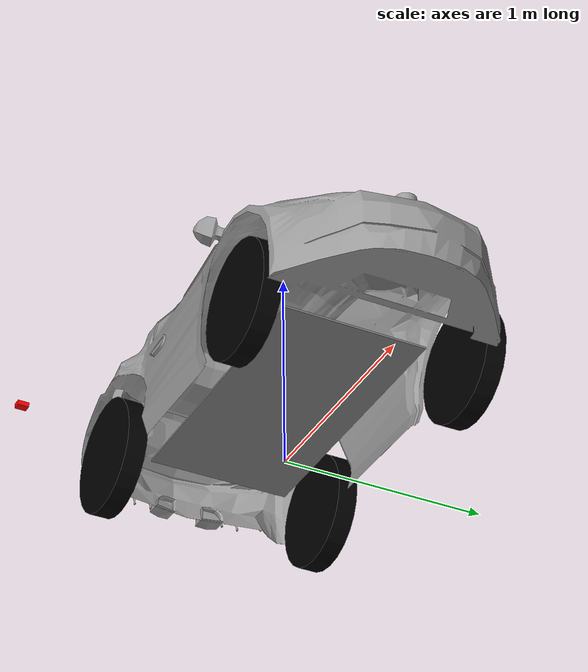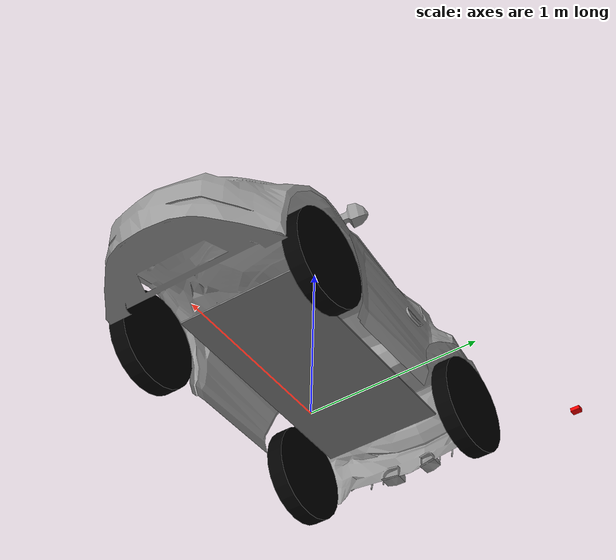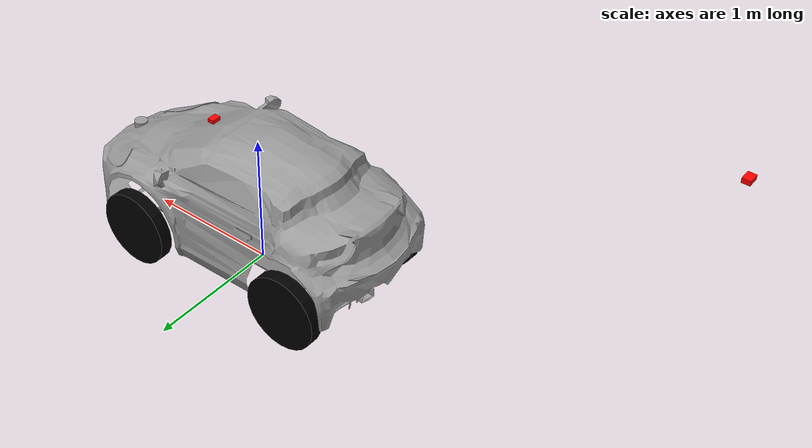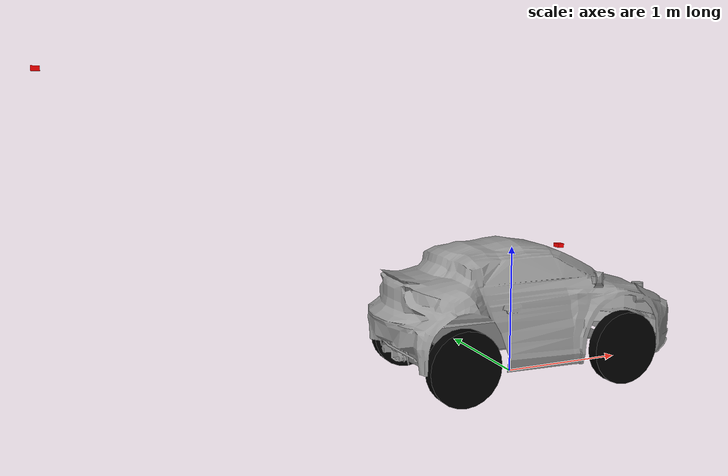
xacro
<?xml version="1.0"?>
<robot name="astrid" xmlns:xacro="http://www.ros.org/wiki/xacro">
  <!-- Degree-to-radian conversions -->
  <xacro:property name="degrees_45" value="0.785398163" />
  <xacro:property name="degrees_90" value="1.57079633" />
  <xacro:property name="degrees_30" value="0.523598776" />

  <!-- chassis_length is measured along the x axis, chassis_width
       along the y axis, and chassis_height along the z axis. -->
  <xacro:property name="chassis_length" value="1.3596" />
  <xacro:property name="chassis_width" value="1" />
  <xacro:property name="chassis_height" value="0.01" />
  <xacro:property name="chassis_mass" value="55" />

  <xacro:property name="battery_x_offset" value="0.055" />
  <xacro:property name="battery_dist" value="0.065" />
  <xacro:property name="battery_comp_depth" value="0.02" />
  <xacro:property name="battery_comp_angle" value="0.34906585" />
  <xacro:property name="battery_length" value="0.16" />
  <xacro:property name="battery_width" value="0.047" />
  <xacro:property name="battery_height" value="0.024" />
  <xacro:property name="battery_mass" value="0.5025" />

  <xacro:property name="hub_dia" value="0.06" />
  <xacro:property name="tire_dia" value="0.56" />
  <xacro:property name="tire_width" value="0.095" />
  <xacro:property name="hex_hub_depth" value="0.039" />
  <xacro:property name="wheel_mass" value="7" />

  <xacro:property name="wheelbase" value="1.3596" />
  <xacro:property name="hex_hub_dist" value="1.1" />
  <xacro:property name="axle_length" value="0.009" />
  <xacro:property name="wheel_travel" value="0.05" />
  <xacro:property name="shock_z_offset" value="0.0655" />

  <xacro:property name="shock_eff_limit" value="3940.4" />
  <xacro:property name="shock_vel_limit" value="1000" />

  <xacro:property name="axle_eff_limit" value="28.5" />
  <xacro:property name="axle_vel_limit" value="14.66" />

  <!-- These constants are used to simulate a Traxxas 2056 servo operated at
       6 V. servo_stall_torque is measured in N m. servo_no_load_speed is
       measured in rad/s. -->
  <xacro:property name="servo_stall_torque" value="57" />
  <xacro:property name="servo_no_load_speed" value="14.66" />

  <material name="battery_mat">
    <color rgba="0 0 1 1" />
  </material>
  <material name="chassis_mat">
    <color rgba="0.5 0.5 0.5 1" />
  </material>
  <material name="tire_mat">
    <color rgba="0 0 0 1" />
  </material>

  <material name="red">
    <color rgba="1 0 0 1" />
  </material>

  <material name="green">
    <color rgba="0 0 0 1" />
  </material>

  <!-- Null inertial element. This is needed to make the model work with
       Gazebo. -->
  <xacro:macro name="null_inertial">
    <inertial>
      <mass value="0.001" />
      <inertia ixx="0.001" ixy="0" ixz="0" iyy="0.001" iyz="0" izz="0.001" />
    </inertial>
  </xacro:macro>

  <!-- Inertia of a solid cuboid. Width is measured along the x axis, depth
       along the y axis, and height along the z axis. -->
  <xacro:macro name="solid_cuboid_inertial" params="width depth height mass *origin">
    <inertial>
      <xacro:insert_block name="origin" />
      <mass value="${mass}" />
      <inertia ixx="${mass * (depth * depth + height * height) / 12}" ixy="0" ixz="0" iyy="${mass * (width * width + height * height) / 12}" iyz="0" izz="${mass * (width * width + depth * depth) / 12}" />
    </inertial>
  </xacro:macro>

  <xacro:macro name="thick_walled_tube_inertial" params="inner_rad outer_rad height mass">
    <inertial>
      <mass value="${mass}" />
      <inertia ixx="${(1 / 12) * mass * (3 * (inner_rad * inner_rad +
                    outer_rad * outer_rad) + height * height)}" ixy="0" ixz="0" iyy="${(1 / 12) * mass * (3 * (inner_rad * inner_rad +
                    outer_rad * outer_rad) + height * height)}" iyz="0" izz="${mass * (inner_rad * inner_rad +
                    outer_rad * outer_rad) / 2}" />
    </inertial>
  </xacro:macro>

  <!-- Gazebo - Wheels  -->
  <xacro:macro name="wheels_g">
    <mu1 value="1.0"/>
    <mu2 value="1.0"/>
    <kp  value="15000000.0" />
    <kd  value="1.0" />
    <fdir1 value="1 0 0"/>
  </xacro:macro>

  <xacro:macro name="chassis_g">
    <mu1 value="0"/>
    <mu2 value="0"/>
    <kp  value="70000000000.0" />
    <kd  value="0.001" />
  </xacro:macro>

  <!-- Shock absorber -->
  <xacro:macro name="shock" params="lr_prefix fr_prefix lr_reflect fr_reflect child">
    <joint name="${lr_prefix}_${fr_prefix}_shock" type="prismatic">
      <parent link="chassis" />
      <child link="${child}" />

      <origin xyz="${fr_reflect * wheelbase / 2}
                   ${lr_reflect * ((hex_hub_dist / 2) - axle_length)}
                   ${(wheel_travel / 2) - shock_z_offset}" />
      <axis xyz="0 0 -1" />
      <limit lower="${-wheel_travel / 2}" upper="${wheel_travel / 2}" effort="${shock_eff_limit}" velocity="${shock_vel_limit}" />
    </joint>
    <transmission name="${lr_prefix}_${fr_prefix}_shock_trans">
      <type>transmission_interface/SimpleTransmission</type>
      <joint name="${lr_prefix}_${fr_prefix}_shock">
        <hardwareInterface>hardware_interface/EffortJointInterface</hardwareInterface>
      </joint>
      <actuator name="${lr_prefix}_${fr_prefix}_shock_act">
        <!-- This hardwareInterface element exists for compatibility
             with ROS Hydro. -->
        <hardwareInterface>hardware_interface/EffortJointInterface</hardwareInterface>
        <mechanicalReduction>1</mechanicalReduction>
      </actuator>
    </transmission>
  </xacro:macro>

  <!-- The "wheel" macro defines an axle carrier, axle, and wheel. -->
  <xacro:macro name="wheel" params="lr_prefix fr_prefix lr_reflect">
    <link name="${lr_prefix}_${fr_prefix}_axle_carrier">
      <xacro:null_inertial />
    </link>

    <!-- The left and right axles have the same axis so that identical
         rotation values cause the wheels to rotate in the same direction. -->
    <joint name="${lr_prefix}_${fr_prefix}_axle" type="continuous">
      <parent link="${lr_prefix}_${fr_prefix}_axle_carrier" />
      <child link="${lr_prefix}_${fr_prefix}_wheel" />
      <origin rpy="${degrees_90} 0 0" />
      <axis xyz="0 0 -1" />
      <limit effort="${axle_eff_limit+10}" velocity="${axle_vel_limit+5}" />
    </joint>
    <transmission name="${lr_prefix}_${fr_prefix}_axle_trans">
      <type>transmission_interface/SimpleTransmission</type>
      <joint name="${lr_prefix}_${fr_prefix}_axle">
        <hardwareInterface>hardware_interface/EffortJointInterface</hardwareInterface>
      </joint>
      <actuator name="${lr_prefix}_${fr_prefix}_axle_act">
        <!-- This hardwareInterface element exists for compatibility
             with ROS Hydro. -->
        <hardwareInterface>hardware_interface/EffortJointInterface</hardwareInterface>
        <mechanicalReduction>1</mechanicalReduction>
      </actuator>
    </transmission>

    <link name="${lr_prefix}_${fr_prefix}_wheel">
      <visual>
        <origin xyz="0
                     ${lr_reflect * (axle_length - (tire_width /
                     2 - hex_hub_depth))}
                     0" />
        <geometry>
          <cylinder radius="${tire_dia / 2}" length="${tire_width}" />
        </geometry>
        <material name="tire_mat" />
      </visual>

      <collision>
        <origin xyz="0
                     ${lr_reflect * (axle_length - (tire_width /
                     2 - hex_hub_depth))}
                     0" />
        <geometry>
          <cylinder radius="${tire_dia / 2}" length="${tire_width}" />
        </geometry>
      </collision>

      <xacro:thick_walled_tube_inertial inner_rad="${hub_dia / 2}" outer_rad="${tire_dia / 2}" height="${tire_width}" mass="${wheel_mass}" />
    </link>

    <gazebo reference="${lr_prefix}_${fr_prefix}_wheel">
      <xacro:wheels_g />
      <material>Gazebo/Black</material>
    </gazebo>
  </xacro:macro>

  <!-- Front wheel -->
  <xacro:macro name="front_wheel" params="lr_prefix fr_prefix lr_reflect fr_reflect">
    <xacro:shock lr_prefix="${lr_prefix}" fr_prefix="${fr_prefix}" lr_reflect="${lr_reflect}" fr_reflect="${fr_reflect}" child="${lr_prefix}_steering_link" />

    <link name="${lr_prefix}_steering_link">
      <xacro:null_inertial />
    </link>

    <joint name="${lr_prefix}_steering_joint" type="revolute">
      <parent link="${lr_prefix}_steering_link" />
      <child link="${lr_prefix}_${fr_prefix}_axle_carrier" />
      <axis xyz="0 0 1" />
      <limit lower="${-degrees_30}" upper="${degrees_30}" effort="${servo_stall_torque}" velocity="${servo_no_load_speed}" />
    </joint>
    <transmission name="${lr_prefix}_steering_trans">
      <type>transmission_interface/SimpleTransmission</type>
      <joint name="${lr_prefix}_steering_joint">
        <hardwareInterface>hardware_interface/EffortJointInterface</hardwareInterface>
      </joint>
      <actuator name="${lr_prefix}_steering_act">
        <!-- This hardwareInterface element exists for compatibility
             with ROS Hydro. -->
        <hardwareInterface>hardware_interface/EffortJointInterface</hardwareInterface>
        <mechanicalReduction>1</mechanicalReduction>
      </actuator>
    </transmission>

    <xacro:wheel lr_prefix="${lr_prefix}" fr_prefix="${fr_prefix}" lr_reflect="${lr_reflect}" />
  </xacro:macro>

  <!-- Rear wheel -->
  <xacro:macro name="rear_wheel" params="lr_prefix fr_prefix lr_reflect fr_reflect">
    <xacro:shock lr_prefix="${lr_prefix}" fr_prefix="${fr_prefix}" lr_reflect="${lr_reflect}" fr_reflect="${fr_reflect}" child="${lr_prefix}_${fr_prefix}_axle_carrier" />
    <xacro:wheel lr_prefix="${lr_prefix}" fr_prefix="${fr_prefix}" lr_reflect="${lr_reflect}" />
  </xacro:macro>

  <!-- base_link must have geometry so that its axes can be displayed in
       rviz. -->
  <link name="base_link" />
  <!-- Chassis -->
  <link name="chassis">
    <visual>
      <origin xyz="0 0 0" />

      <geometry>
        <box size="${chassis_length} ${chassis_width-0.3} ${chassis_height}" />
      </geometry>
      <material name="chassis_mat" />
    </visual>

    <collision>
      <origin xyz="0 0 0" />
      <geometry>
        <box size="${chassis_length} ${chassis_width-0.3} ${chassis_height}"/>
      </geometry>
    </collision>

    <xacro:solid_cuboid_inertial width="${chassis_length}" depth="${chassis_width}" height="${chassis_height*20}" mass="${chassis_mass}">
      <origin xyz="0 0 0" />
    </xacro:solid_cuboid_inertial>
  </link>
  <gazebo reference="chassis">
    <material>Gazebo/Grey</material>
  </gazebo>

  <joint name="base_link_to_chassis" type="fixed">
    <parent link="base_link" />
    <child link="chassis" />
    <origin xyz="0.0 0.0 0.3" rpy="0.0 0.0 0.0"/>
  </joint>

  <!-- Batteries -->

  <!-- Shelll-->
  <link name="shell">
    <visual>
      <origin xyz="0 0 0" rpy="0 0 1.57" />
      <geometry>
        <mesh filename="package://astrid_description/meshes/kabuk.dae" />
      </geometry>
    </visual>

    <collision>
      <origin xyz="0 0 0" rpy="0 0 1.57" />
      <geometry>
        <mesh filename="package://astrid_description/meshes/kabuk.dae" />
      </geometry>
    </collision>
  </link>

  <gazebo reference="shell">
    <material>Gazebo/Grey</material>
  </gazebo>

  <joint name="chassis_shell_joint" type="fixed">
    <origin xyz="-0.28 -.017 0.19" rpy="0.0 0.0 0.0" />
    <parent link="chassis" />
    <child link="shell" />
    <axis xyz="0.0 0.0 0.0" />
    <limit lower="0.0" upper="0.0" effort="0.0" velocity="0.0" />
  </joint>

  <!-- Wheels -->
  <xacro:front_wheel lr_prefix="left" fr_prefix="front" lr_reflect="1" fr_reflect="1" />
  <xacro:front_wheel lr_prefix="right" fr_prefix="front" lr_reflect="-1" fr_reflect="1" />
  <xacro:rear_wheel lr_prefix="left" fr_prefix="rear" lr_reflect="1" fr_reflect="-1" />
  <xacro:rear_wheel lr_prefix="right" fr_prefix="rear" lr_reflect="-1" fr_reflect="-1" />

  <joint name="camera_joint" type="fixed">
    <axis xyz="0 1 0" />
    <origin xyz="0.7 0 0.5" rpy="0 0 0" />
    <parent link="shell" />
    <child link="camera_link" />
  </joint>

  <!-- Camera -->
  <link name="camera_link">
    <visual>
      <origin xyz="0 0 0" rpy="0 0 0" />
      <geometry>
        <box size="0.05 0.07 0.03" />
      </geometry>
      <material name="red" />
    </visual>

    <inertial>
      <mass value="1e-5" />
      <origin xyz="0 0 0" rpy="0 0 0" />
      <inertia ixx="1e-6" ixy="0" ixz="0" iyy="1e-6" iyz="0" izz="1e-6" />
    </inertial>
  </link>

  <!-- camera -->
  <gazebo reference="camera_link">
    <sensor type="camera" name="main_camera">
      <camera name="head">
        <horizontal_fov>1.3962634</horizontal_fov>
        <image>
          <width>1280</width>
          <height>720</height>
          <format>R8G8B8</format>
        </image>
        <clip>
          <near>0.02</near>
          <far>50</far>
        </clip>
        <noise>
          <type>gaussian</type>
          <mean>0.0</mean>
          <stddev>0.007</stddev>
        </noise>
      </camera>
      <plugin name="camera_controller" filename="libgazebo_ros_camera.so">
        <alwaysOn>true</alwaysOn>
        <updateRate>30.0</updateRate>
        <cameraName>camera</cameraName>
        <imageTopicName>image_raw</imageTopicName>
        <cameraInfoTopicName>camera_info</cameraInfoTopicName>
        <frameName>camera_link</frameName>
        <hackBaseline>0.07</hackBaseline>
        <distortionK1>0.0</distortionK1>
        <distortionK2>0.0</distortionK2>
        <distortionK3>0.0</distortionK3>
        <distortionT1>0.0</distortionT1>
        <distortionT2>0.0</distortionT2>
      </plugin>
    </sensor>
  </gazebo>

  <!-- laser -->

<xacro:macro name="base_scan_geometry">
  <geometry>
    <cylinder length="0.05" radius="0.05" />
  </geometry>
</xacro:macro>

<xacro:macro name="lidar_geometry">
  <geometry>
    <cylinder length="0.1" radius="0.04" />
  </geometry>
</xacro:macro>

  <joint name="base_scan_joint" type="fixed">
    <origin xyz="1.2 -0.032 0.3" rpy="0 0.0 0.0" />
    <parent link="chassis" />
    <child link="base_scan" />
  </joint>

  <link name="base_scan">
      <visual>
          <xacro:base_scan_geometry />
      </visual>

      <inertial>
        <mass value="0.1"/>
        <inertia ixx="0.00008333333" ixy="0" ixz="0" iyy="0.00008333333" iyz="0" izz="0.000125"/>
      </inertial>
  </link>

  <gazebo reference="base_scan">
    <material>Gazebo/Grey</material>
    <mu1>0.2</mu1>
    <mu2>0.2</mu2>
  </gazebo>

  <gazebo reference="base_scan">
    <sensor type="ray" name="lidar">
      <pose>0 0 0 0 0 0</pose>
      <visualize>true</visualize>
      <update_rate>50</update_rate>
      <ray>
        <scan>
          <horizontal>
            <samples>720</samples>
            <resolution>1</resolution>
            <min_angle>-1.57079</min_angle>
            <max_angle>1.57079</max_angle>
          </horizontal>
        </scan>
        <range>
          <min>0.10</min>
          <max>21.0</max>
          <resolution>0.01</resolution>
        </range>
        <noise>
          <type>gaussian</type>
          <mean>0.0</mean>
          <stddev>0.01</stddev>
        </noise>
      </ray>
      <plugin name="lidar_controller" filename="libgazebo_ros_laser.so">
        <topicName>scan</topicName>
        <frameName>base_scan</frameName>
        <alwaysOn>true</alwaysOn>
      </plugin>
    </sensor>
  </gazebo>

  <!-- Top View Camera-->
  <joint name="top_view_camera_joint" type="fixed">
    <axis xyz="0 1 0" />
    <origin xyz="-3 0 1.8" rpy="0 0 0" />
    <parent link="shell"/>
    <child link="top_view_camera_link"/>
  </joint>

  <link name="top_view_camera_link">
    <visual>
      <origin xyz="0 0 0" rpy="0 0 0"/>
      <geometry>
    <box size="0.05 0.07 0.03"/>
      </geometry>
      <material name="red"/>
    </visual>

    <inertial>
      <mass value="1e-5" />
      <origin xyz="0 0 0" rpy="0 0 0"/>
      <inertia ixx="1e-6" ixy="0" ixz="0" iyy="1e-6" iyz="0" izz="1e-6" />
    </inertial>
  </link>

<!-- top view camera -->
    <gazebo reference="top_view_camera_link">
      <sensor type="camera" name="top_view_camera">
        <update_rate>30.0</update_rate>
        <camera name="top_view_head">
          <horizontal_fov>1.3962634</horizontal_fov>
          <image>
            <width>1600</width>
            <height>900</height>
            <format>R8G8B8</format>
          </image>
          <clip>
            <near>0.02</near>
            <far>50</far>
          </clip>
          <noise>
            <type>gaussian</type>
            <!-- Noise is sampled independently per pixel on each frame.
                 That pixel's noise value is added to each of its color
                 channels, which at that point lie in the range [0,1]. -->
            <mean>0.0</mean>
            <stddev>0.007</stddev>
          </noise>
        </camera>
        <plugin name="camera_controller" filename="libgazebo_ros_camera.so">
          <alwaysOn>true</alwaysOn>
          <updateRate>0.0</updateRate>
          <cameraName>astrid/top_view_camera</cameraName>
          <imageTopicName>image_raw</imageTopicName>
          <cameraInfoTopicName>camera_info</cameraInfoTopicName>
          <frameName>camera_link</frameName>
          <hackBaseline>0.07</hackBaseline>
          <distortionK1>0.0</distortionK1>
          <distortionK2>0.0</distortionK2>
          <distortionK3>0.0</distortionK3>
          <distortionT1>0.0</distortionT1>
          <distortionT2>0.0</distortionT2>
        </plugin>
      </sensor>
    </gazebo>

  <gazebo>
    <plugin name="gazebo_ros_control" filename="libgazebo_ros_control.so" />

    <robotBaseFrame>base_link</robotBaseFrame>
    <commandTopic>cmd_vel</commandTopic>
      <odometryTopic>odom</odometryTopic>
      <odometryFrame>odom</odometryFrame>
  </gazebo>
</robot>
